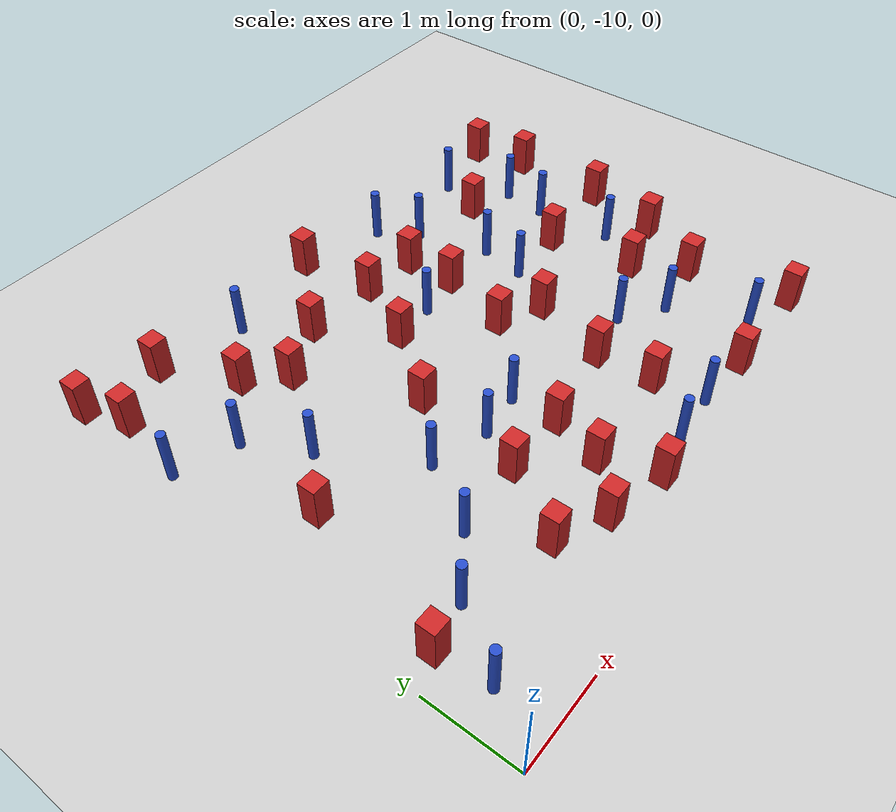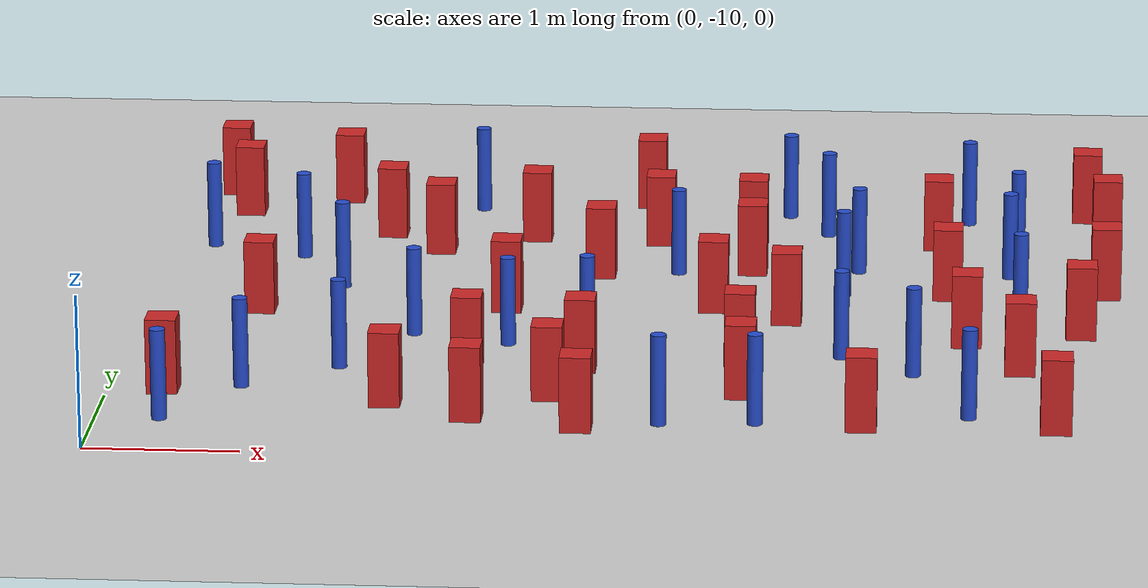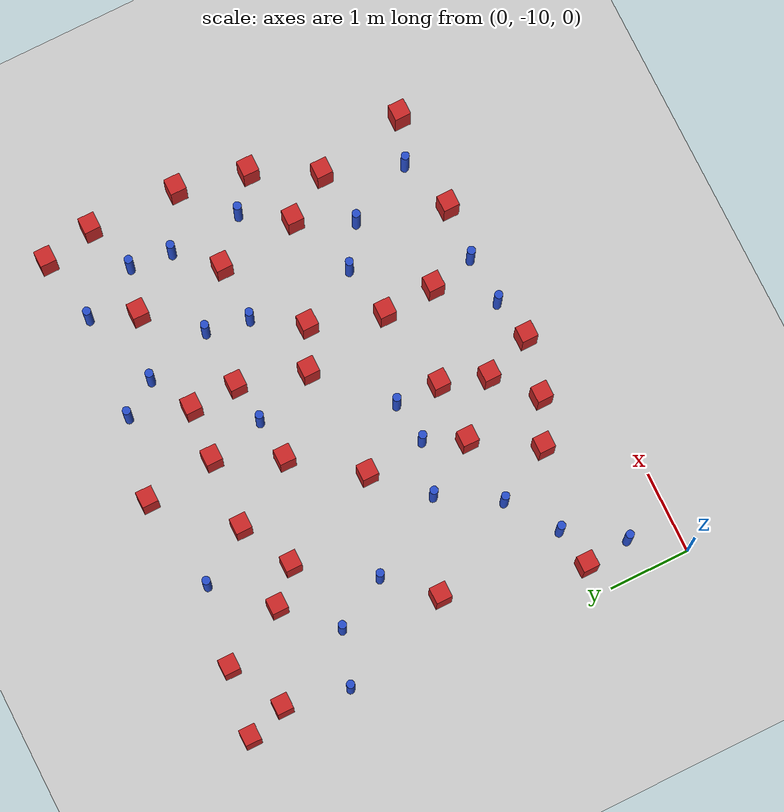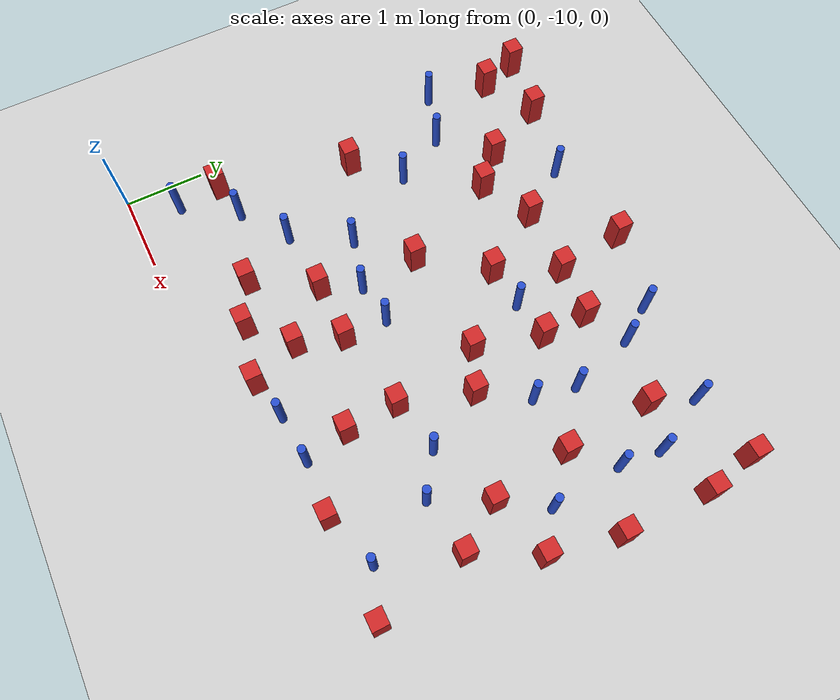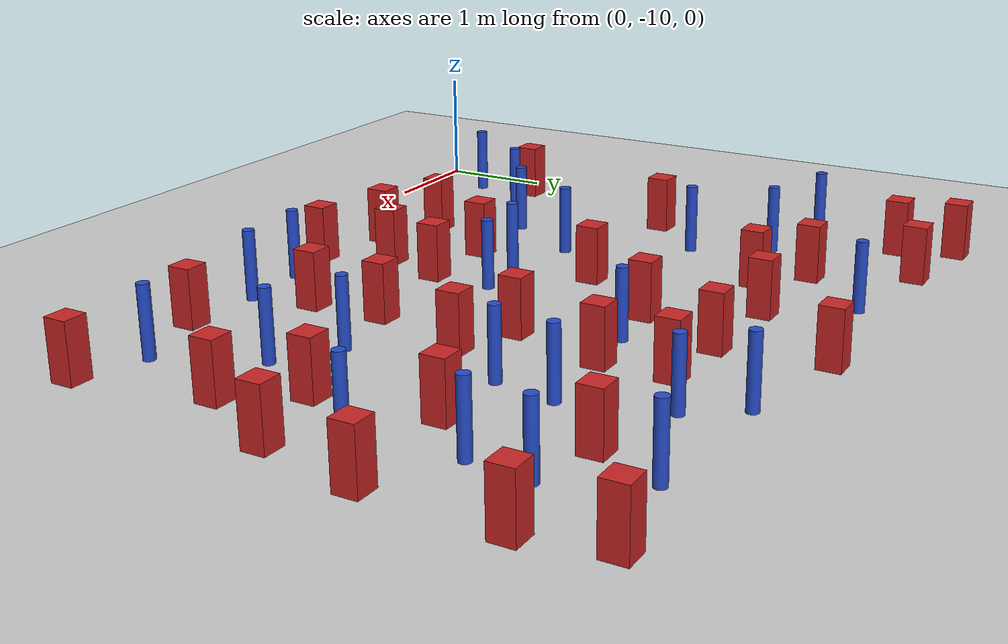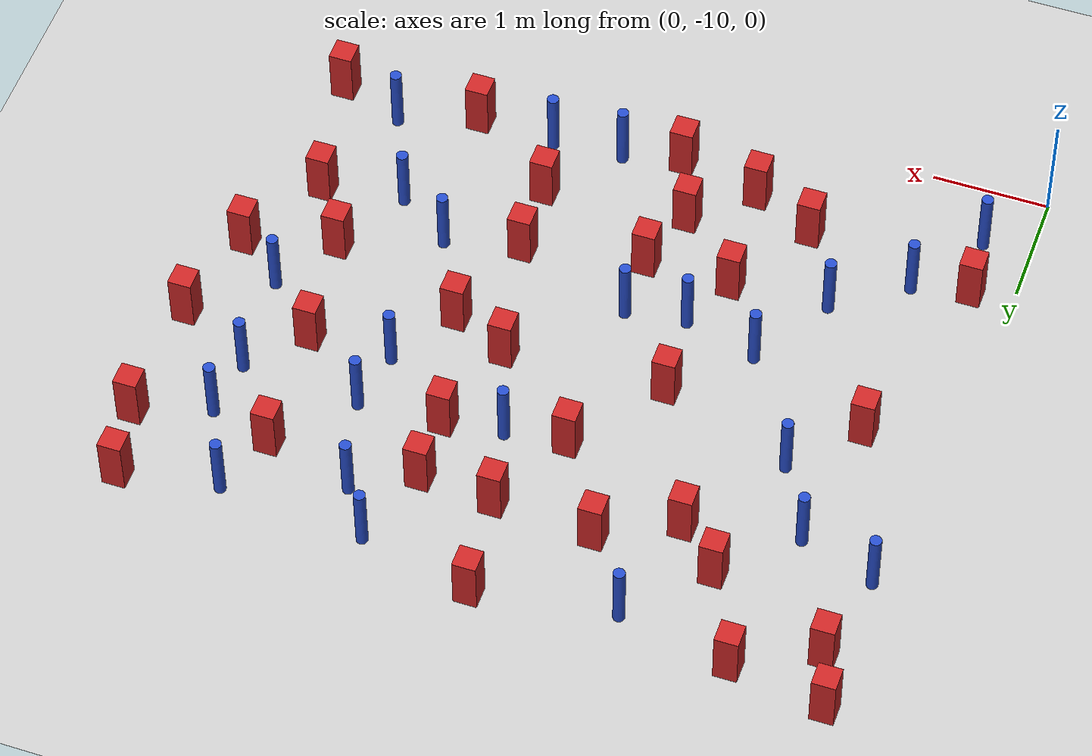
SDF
<sdf version="1.6">
 <world name="default">
  <model name="ground_plane">
   <static>1</static>
   <link name="link">
    <collision name="collision">
     <geometry><plane><normal>0 0 1</normal><size>100 100</size></plane></geometry>
     <surface><friction><ode><mu>100</mu><mu2>50</mu2></ode></friction></surface>
    </collision>
    <visual name="visual">
     <cast_shadows>0</cast_shadows>
     <geometry><plane><normal>0 0 1</normal><size>100 100</size></plane></geometry>
     <material>
      <ambient>1.0 1.0 1.0 1.0</ambient>
      <diffuse>0.8 0.8 0.8 1.0</diffuse>
      <specular>0.01 0.01 0.01 1.000000</specular>
     </material>
    </visual>
   </link>
  </model>
  <model name="square_post_obstacle0">
   <static>true</static>
   <pose>4.03438608395 -5.59124404248 -6.11067671241e-07 -5.50515727128e-06 -8.79689657224e-07 2.37013304536e-05</pose>
   <link name="link">
    <pose>0 0 0.25 0 -0 0</pose>
    <inertial>
     <mass>100</mass>
     <inertia>
      <ixx>0.166667</ixx>
      <ixy>0</ixy>
      <ixz>0</ixz>
      <iyy>0.166667</iyy>
      <iyz>0</iyz>
      <izz>0.166667</izz>
     </inertia>
    </inertial>
    <collision name="collision"><geometry><box><size>.2 .2 .5</size></box></geometry></collision>
    <visual name="visual">
     <geometry><box><size>.2 .2 .5</size></box></geometry>
     <material>
      <script><name>Gazebo/Red</name><uri>file://media/materials/scripts/gazebo.material</uri></script>
     </material>
    </visual>
   </link>
  </model>
  <model name="square_post_obstacle13">
   <static>true</static>
   <pose>2.83978793592 -8.85130759816 -6.11067671241e-07 -5.50515727128e-06 -8.79689657224e-07 2.37013304536e-05</pose>
   <link name="link">
    <pose>0 0 0.25 0 -0 0</pose>
    <inertial>
     <mass>100</mass>
     <inertia>
      <ixx>0.166667</ixx>
      <ixy>0</ixy>
      <ixz>0</ixz>
      <iyy>0.166667</iyy>
      <iyz>0</iyz>
      <izz>0.166667</izz>
     </inertia>
    </inertial>
    <collision name="collision"><geometry><box><size>.2 .2 .5</size></box></geometry></collision>
    <visual name="visual">
     <geometry><box><size>.2 .2 .5</size></box></geometry>
     <material>
      <script><name>Gazebo/Red</name><uri>file://media/materials/scripts/gazebo.material</uri></script>
     </material>
    </visual>
   </link>
  </model>
  <model name="pole_obstacle9">
   <static>true</static>
   <pose>4.77885601675 -6.13484441956 -9.47619616065e-06 5.49618799737e-07 2.36310414037e-07 -1.55090534814e-07</pose>
   <link name="link">
    <pose>0 0 0.3 0 -0 0</pose>
    <inertial>
     <mass>1</mass>
     <inertia><ixx>0.145833</ixx><ixy>0</ixy><ixz>0</ixz><iyy>0.145833</iyy><iyz>0</iyz><izz>0.125</izz></inertia>
    </inertial>
    <collision name="collision">
     <geometry><cylinder><radius>0.05</radius><length>.6</length></cylinder></geometry>
    </collision>
    <visual name="visual">
     <geometry><cylinder><radius>0.05</radius><length>.6</length></cylinder></geometry>
     <material>
      <script><name>Gazebo/Blue</name><uri>file://media/materials/scripts/gazebo.material</uri></script>
     </material>
    </visual>
   </link>
  </model>
  <model name="square_post_obstacle23">
   <static>true</static>
   <pose>6.27539899405 -7.42334846016 -6.11067671241e-07 -5.50515727128e-06 -8.79689657224e-07 2.37013304536e-05</pose>
   <link name="link">
    <pose>0 0 0.25 0 -0 0</pose>
    <inertial>
     <mass>100</mass>
     <inertia>
      <ixx>0.166667</ixx>
      <ixy>0</ixy>
      <ixz>0</ixz>
      <iyy>0.166667</iyy>
      <iyz>0</iyz>
      <izz>0.166667</izz>
     </inertia>
    </inertial>
    <collision name="collision"><geometry><box><size>.2 .2 .5</size></box></geometry></collision>
    <visual name="visual">
     <geometry><box><size>.2 .2 .5</size></box></geometry>
     <material>
      <script><name>Gazebo/Red</name><uri>file://media/materials/scripts/gazebo.material</uri></script>
     </material>
    </visual>
   </link>
  </model>
  <model name="square_post_obstacle24">
   <static>true</static>
   <pose>0.453122512933 -4.9976376463 -6.11067671241e-07 -5.50515727128e-06 -8.79689657224e-07 2.37013304536e-05</pose>
   <link name="link">
    <pose>0 0 0.25 0 -0 0</pose>
    <inertial>
     <mass>100</mass>
     <inertia>
      <ixx>0.166667</ixx>
      <ixy>0</ixy>
      <ixz>0</ixz>
      <iyy>0.166667</iyy>
      <iyz>0</iyz>
      <izz>0.166667</izz>
     </inertia>
    </inertial>
    <collision name="collision"><geometry><box><size>.2 .2 .5</size></box></geometry></collision>
    <visual name="visual">
     <geometry><box><size>.2 .2 .5</size></box></geometry>
     <material>
      <script><name>Gazebo/Red</name><uri>file://media/materials/scripts/gazebo.material</uri></script>
     </material>
    </visual>
   </link>
  </model>
  <model name="pole_obstacle42">
   <static>true</static>
   <pose>3.54738898103 -6.23367507954 -9.47619616065e-06 5.49618799738e-07 2.3631041406e-07 -1.55090534801e-07</pose>
   <link name="link">
    <pose>0 0 0.3 0 -0 0</pose>
    <inertial>
     <mass>1</mass>
     <inertia><ixx>0.145833</ixx><ixy>0</ixy><ixz>0</ixz><iyy>0.145833</iyy><iyz>0</iyz><izz>0.125</izz></inertia>
    </inertial>
    <collision name="collision">
     <geometry><cylinder><radius>0.05</radius><length>.6</length></cylinder></geometry>
    </collision>
    <visual name="visual">
     <geometry><cylinder><radius>0.05</radius><length>.6</length></cylinder></geometry>
     <material>
      <script><name>Gazebo/Blue</name><uri>file://media/materials/scripts/gazebo.material</uri></script>
     </material>
    </visual>
   </link>
  </model>
  <model name="square_post_obstacle44">
   <static>true</static>
   <pose>1.50933184095 -5.4530257998 -6.11067671241e-07 -5.50515727128e-06 -8.79689657224e-07 2.37013304536e-05</pose>
   <link name="link">
    <pose>0 0 0.25 0 -0 0</pose>
    <inertial>
     <mass>100</mass>
     <inertia>
      <ixx>0.166667</ixx>
      <ixy>0</ixy>
      <ixz>0</ixz>
      <iyy>0.166667</iyy>
      <iyz>0</iyz>
      <izz>0.166667</izz>
     </inertia>
    </inertial>
    <collision name="collision"><geometry><box><size>.2 .2 .5</size></box></geometry></collision>
    <visual name="visual">
     <geometry><box><size>.2 .2 .5</size></box></geometry>
     <material>
      <script><name>Gazebo/Red</name><uri>file://media/materials/scripts/gazebo.material</uri></script>
     </material>
    </visual>
   </link>
  </model>
  <model name="pole_obstacle46">
   <static>true</static>
   <pose>0.945628362629 -6.00839822146 -9.47619616065e-06 5.49618799737e-07 2.36310414065e-07 -1.55090534796e-07</pose>
   <link name="link">
    <pose>0 0 0.3 0 -0 0</pose>
    <inertial>
     <mass>1</mass>
     <inertia><ixx>0.145833</ixx><ixy>0</ixy><ixz>0</ixz><iyy>0.145833</iyy><iyz>0</iyz><izz>0.125</izz></inertia>
    </inertial>
    <collision name="collision">
     <geometry><cylinder><radius>0.05</radius><length>.6</length></cylinder></geometry>
    </collision>
    <visual name="visual">
     <geometry><cylinder><radius>0.05</radius><length>.6</length></cylinder></geometry>
     <material>
      <script><name>Gazebo/Blue</name><uri>file://media/materials/scripts/gazebo.material</uri></script>
     </material>
    </visual>
   </link>
  </model>
  <model name="square_post_obstacle55">
   <static>true</static>
   <pose>4.85975693543 -9.32978967064 -6.11067671241e-07 -5.50515727128e-06 -8.79689657224e-07 2.37013304536e-05</pose>
   <link name="link">
    <pose>0 0 0.25 0 -0 0</pose>
    <inertial>
     <mass>100</mass>
     <inertia>
      <ixx>0.166667</ixx>
      <ixy>0</ixy>
      <ixz>0</ixz>
      <iyy>0.166667</iyy>
      <iyz>0</iyz>
      <izz>0.166667</izz>
     </inertia>
    </inertial>
    <collision name="collision"><geometry><box><size>.2 .2 .5</size></box></geometry></collision>
    <visual name="visual">
     <geometry><box><size>.2 .2 .5</size></box></geometry>
     <material>
      <script><name>Gazebo/Red</name><uri>file://media/materials/scripts/gazebo.material</uri></script>
     </material>
    </visual>
   </link>
  </model>
  <model name="pole_obstacle53">
   <static>true</static>
   <pose>1.44177730624 -8.34359910284 -9.47619616065e-06 5.49618799737e-07 2.36310414046e-07 -1.55090534809e-07</pose>
   <link name="link">
    <pose>0 0 0.3 0 -0 0</pose>
    <inertial>
     <mass>1</mass>
     <inertia><ixx>0.145833</ixx><ixy>0</ixy><ixz>0</ixz><iyy>0.145833</iyy><iyz>0</iyz><izz>0.125</izz></inertia>
    </inertial>
    <collision name="collision">
     <geometry><cylinder><radius>0.05</radius><length>.6</length></cylinder></geometry>
    </collision>
    <visual name="visual">
     <geometry><cylinder><radius>0.05</radius><length>.6</length></cylinder></geometry>
     <material>
      <script><name>Gazebo/Blue</name><uri>file://media/materials/scripts/gazebo.material</uri></script>
     </material>
    </visual>
   </link>
  </model>
  <model name="pole_obstacle56">
   <static>true</static>
   <pose>3.02124978385 -7.743135954 -9.47619616065e-06 5.49618799738e-07 2.3631041406e-07 -1.55090534801e-07</pose>
   <link name="link">
    <pose>0 0 0.3 0 -0 0</pose>
    <inertial>
     <mass>1</mass>
     <inertia><ixx>0.145833</ixx><ixy>0</ixy><ixz>0</ixz><iyy>0.145833</iyy><iyz>0</iyz><izz>0.125</izz></inertia>
    </inertial>
    <collision name="collision">
     <geometry><cylinder><radius>0.05</radius><length>.6</length></cylinder></geometry>
    </collision>
    <visual name="visual">
     <geometry><cylinder><radius>0.05</radius><length>.6</length></cylinder></geometry>
     <material>
      <script><name>Gazebo/Blue</name><uri>file://media/materials/scripts/gazebo.material</uri></script>
     </material>
    </visual>
   </link>
  </model>
  <model name="square_post_obstacle66">
   <static>true</static>
   <pose>5.51881716951 -7.63360474331 -6.11067671241e-07 -5.50515727128e-06 -8.79689657224e-07 2.37013304536e-05</pose>
   <link name="link">
    <pose>0 0 0.25 0 -0 0</pose>
    <inertial>
     <mass>100</mass>
     <inertia>
      <ixx>0.166667</ixx>
      <ixy>0</ixy>
      <ixz>0</ixz>
      <iyy>0.166667</iyy>
      <iyz>0</iyz>
      <izz>0.166667</izz>
     </inertia>
    </inertial>
    <collision name="collision"><geometry><box><size>.2 .2 .5</size></box></geometry></collision>
    <visual name="visual">
     <geometry><box><size>.2 .2 .5</size></box></geometry>
     <material>
      <script><name>Gazebo/Red</name><uri>file://media/materials/scripts/gazebo.material</uri></script>
     </material>
    </visual>
   </link>
  </model>
  <model name="square_post_obstacle73">
   <static>true</static>
   <pose>3.82033667119 -6.99757932662 -6.11067671241e-07 -5.50515727128e-06 -8.79689657224e-07 2.37013304536e-05</pose>
   <link name="link">
    <pose>0 0 0.25 0 -0 0</pose>
    <inertial>
     <mass>100</mass>
     <inertia>
      <ixx>0.166667</ixx>
      <ixy>0</ixy>
      <ixz>0</ixz>
      <iyy>0.166667</iyy>
      <iyz>0</iyz>
      <izz>0.166667</izz>
     </inertia>
    </inertial>
    <collision name="collision"><geometry><box><size>.2 .2 .5</size></box></geometry></collision>
    <visual name="visual">
     <geometry><box><size>.2 .2 .5</size></box></geometry>
     <material>
      <script><name>Gazebo/Red</name><uri>file://media/materials/scripts/gazebo.material</uri></script>
     </material>
    </visual>
   </link>
  </model>
  <model name="pole_obstacle70">
   <static>true</static>
   <pose>5.86598726586 -5.68438135382 -9.47619616065e-06 5.49618799737e-07 2.36310414037e-07 -1.55090534814e-07</pose>
   <link name="link">
    <pose>0 0 0.3 0 -0 0</pose>
    <inertial>
     <mass>1</mass>
     <inertia><ixx>0.145833</ixx><ixy>0</ixy><ixz>0</ixz><iyy>0.145833</iyy><iyz>0</iyz><izz>0.125</izz></inertia>
    </inertial>
    <collision name="collision">
     <geometry><cylinder><radius>0.05</radius><length>.6</length></cylinder></geometry>
    </collision>
    <visual name="visual">
     <geometry><cylinder><radius>0.05</radius><length>.6</length></cylinder></geometry>
     <material>
      <script><name>Gazebo/Blue</name><uri>file://media/materials/scripts/gazebo.material</uri></script>
     </material>
    </visual>
   </link>
  </model>
  <model name="pole_obstacle78">
   <static>true</static>
   <pose>4.68461789112 -6.66169733039 -9.47619616065e-06 5.49618799737e-07 2.36310414037e-07 -1.55090534814e-07</pose>
   <link name="link">
    <pose>0 0 0.3 0 -0 0</pose>
    <inertial>
     <mass>1</mass>
     <inertia><ixx>0.145833</ixx><ixy>0</ixy><ixz>0</ixz><iyy>0.145833</iyy><iyz>0</iyz><izz>0.125</izz></inertia>
    </inertial>
    <collision name="collision">
     <geometry><cylinder><radius>0.05</radius><length>.6</length></cylinder></geometry>
    </collision>
    <visual name="visual">
     <geometry><cylinder><radius>0.05</radius><length>.6</length></cylinder></geometry>
     <material>
      <script><name>Gazebo/Blue</name><uri>file://media/materials/scripts/gazebo.material</uri></script>
     </material>
    </visual>
   </link>
  </model>
  <model name="pole_obstacle79">
   <static>true</static>
   <pose>0.294471589557 -5.7892974481 -9.47619616065e-06 5.49618799737e-07 2.36310414067e-07 -1.55090534795e-07</pose>
   <link name="link">
    <pose>0 0 0.3 0 -0 0</pose>
    <inertial>
     <mass>1</mass>
     <inertia><ixx>0.145833</ixx><ixy>0</ixy><ixz>0</ixz><iyy>0.145833</iyy><iyz>0</iyz><izz>0.125</izz></inertia>
    </inertial>
    <collision name="collision">
     <geometry><cylinder><radius>0.05</radius><length>.6</length></cylinder></geometry>
    </collision>
    <visual name="visual">
     <geometry><cylinder><radius>0.05</radius><length>.6</length></cylinder></geometry>
     <material>
      <script><name>Gazebo/Blue</name><uri>file://media/materials/scripts/gazebo.material</uri></script>
     </material>
    </visual>
   </link>
  </model>
  <model name="square_post_obstacle78">
   <static>true</static>
   <pose>3.02090235567 -6.29414527579 -6.11067671241e-07 -5.50515727128e-06 -8.79689657224e-07 2.37013304536e-05</pose>
   <link name="link">
    <pose>0 0 0.25 0 -0 0</pose>
    <inertial>
     <mass>100</mass>
     <inertia>
      <ixx>0.166667</ixx>
      <ixy>0</ixy>
      <ixz>0</ixz>
      <iyy>0.166667</iyy>
      <iyz>0</iyz>
      <izz>0.166667</izz>
     </inertia>
    </inertial>
    <collision name="collision"><geometry><box><size>.2 .2 .5</size></box></geometry></collision>
    <visual name="visual">
     <geometry><box><size>.2 .2 .5</size></box></geometry>
     <material>
      <script><name>Gazebo/Red</name><uri>file://media/materials/scripts/gazebo.material</uri></script>
     </material>
    </visual>
   </link>
  </model>
  <model name="pole_obstacle82">
   <static>true</static>
   <pose>4.1876604869 -9.29163023426 -9.47619616065e-06 5.49618799737e-07 2.36310414065e-07 -1.55090534796e-07</pose>
   <link name="link">
    <pose>0 0 0.3 0 -0 0</pose>
    <inertial>
     <mass>1</mass>
     <inertia><ixx>0.145833</ixx><ixy>0</ixy><ixz>0</ixz><iyy>0.145833</iyy><iyz>0</iyz><izz>0.125</izz></inertia>
    </inertial>
    <collision name="collision">
     <geometry><cylinder><radius>0.05</radius><length>.6</length></cylinder></geometry>
    </collision>
    <visual name="visual">
     <geometry><cylinder><radius>0.05</radius><length>.6</length></cylinder></geometry>
     <material>
      <script><name>Gazebo/Blue</name><uri>file://media/materials/scripts/gazebo.material</uri></script>
     </material>
    </visual>
   </link>
  </model>
  <model name="square_post_obstacle83">
   <static>true</static>
   <pose>4.05098494814 -6.17034678767 -6.11067671241e-07 -5.50515727128e-06 -8.79689657224e-07 2.37013304536e-05</pose>
   <link name="link">
    <pose>0 0 0.25 0 -0 0</pose>
    <inertial>
     <mass>100</mass>
     <inertia>
      <ixx>0.166667</ixx>
      <ixy>0</ixy>
      <ixz>0</ixz>
      <iyy>0.166667</iyy>
      <iyz>0</iyz>
      <izz>0.166667</izz>
     </inertia>
    </inertial>
    <collision name="collision"><geometry><box><size>.2 .2 .5</size></box></geometry></collision>
    <visual name="visual">
     <geometry><box><size>.2 .2 .5</size></box></geometry>
     <material>
      <script><name>Gazebo/Red</name><uri>file://media/materials/scripts/gazebo.material</uri></script>
     </material>
    </visual>
   </link>
  </model>
  <model name="pole_obstacle96">
   <static>true</static>
   <pose>2.09202497045 -4.84234841266 -9.47619616065e-06 5.49618799738e-07 2.3631041406e-07 -1.55090534801e-07</pose>
   <link name="link">
    <pose>0 0 0.3 0 -0 0</pose>
    <inertial>
     <mass>1</mass>
     <inertia><ixx>0.145833</ixx><ixy>0</ixy><ixz>0</ixz><iyy>0.145833</iyy><iyz>0</iyz><izz>0.125</izz></inertia>
    </inertial>
    <collision name="collision">
     <geometry><cylinder><radius>0.05</radius><length>.6</length></cylinder></geometry>
    </collision>
    <visual name="visual">
     <geometry><cylinder><radius>0.05</radius><length>.6</length></cylinder></geometry>
     <material>
      <script><name>Gazebo/Blue</name><uri>file://media/materials/scripts/gazebo.material</uri></script>
     </material>
    </visual>
   </link>
  </model>
  <model name="pole_obstacle97">
   <static>true</static>
   <pose>0.850600874151 -8.76208607417 -9.47619616065e-06 5.49618799737e-07 2.36310414038e-07 -1.55090534813e-07</pose>
   <link name="link">
    <pose>0 0 0.3 0 -0 0</pose>
    <inertial>
     <mass>1</mass>
     <inertia><ixx>0.145833</ixx><ixy>0</ixy><ixz>0</ixz><iyy>0.145833</iyy><iyz>0</iyz><izz>0.125</izz></inertia>
    </inertial>
    <collision name="collision">
     <geometry><cylinder><radius>0.05</radius><length>.6</length></cylinder></geometry>
    </collision>
    <visual name="visual">
     <geometry><cylinder><radius>0.05</radius><length>.6</length></cylinder></geometry>
     <material>
      <script><name>Gazebo/Blue</name><uri>file://media/materials/scripts/gazebo.material</uri></script>
     </material>
    </visual>
   </link>
  </model>
  <model name="square_post_obstacle88">
   <static>true</static>
   <pose>5.31654601096 -5.52830732835 -6.11067671241e-07 -5.50515727128e-06 -8.79689657224e-07 2.37013304536e-05</pose>
   <link name="link">
    <pose>0 0 0.25 0 -0 0</pose>
    <inertial>
     <mass>100</mass>
     <inertia>
      <ixx>0.166667</ixx>
      <ixy>0</ixy>
      <ixz>0</ixz>
      <iyy>0.166667</iyy>
      <iyz>0</iyz>
      <izz>0.166667</izz>
     </inertia>
    </inertial>
    <collision name="collision"><geometry><box><size>.2 .2 .5</size></box></geometry></collision>
    <visual name="visual">
     <geometry><box><size>.2 .2 .5</size></box></geometry>
     <material>
      <script><name>Gazebo/Red</name><uri>file://media/materials/scripts/gazebo.material</uri></script>
     </material>
    </visual>
   </link>
  </model>
  <model name="square_post_obstacle105">
   <static>true</static>
   <pose>6.45507532834 -6.56712777931 -6.11067671241e-07 -5.50515727128e-06 -8.79689657224e-07 2.37013304536e-05</pose>
   <link name="link">
    <pose>0 0 0.25 0 -0 0</pose>
    <inertial>
     <mass>100</mass>
     <inertia>
      <ixx>0.166667</ixx>
      <ixy>0</ixy>
      <ixz>0</ixz>
      <iyy>0.166667</iyy>
      <iyz>0</iyz>
      <izz>0.166667</izz>
     </inertia>
    </inertial>
    <collision name="collision"><geometry><box><size>.2 .2 .5</size></box></geometry></collision>
    <visual name="visual">
     <geometry><box><size>.2 .2 .5</size></box></geometry>
     <material>
      <script><name>Gazebo/Red</name><uri>file://media/materials/scripts/gazebo.material</uri></script>
     </material>
    </visual>
   </link>
  </model>
  <model name="pole_obstacle130">
   <static>true</static>
   <pose>5.17608930107 -8.29183295654 -9.47619616065e-06 5.49618799737e-07 2.36310414065e-07 -1.55090534796e-07</pose>
   <link name="link">
    <pose>0 0 0.3 0 -0 0</pose>
    <inertial>
     <mass>1</mass>
     <inertia><ixx>0.145833</ixx><ixy>0</ixy><ixz>0</ixz><iyy>0.145833</iyy><iyz>0</iyz><izz>0.125</izz></inertia>
    </inertial>
    <collision name="collision">
     <geometry><cylinder><radius>0.05</radius><length>.6</length></cylinder></geometry>
    </collision>
    <visual name="visual">
     <geometry><cylinder><radius>0.05</radius><length>.6</length></cylinder></geometry>
     <material>
      <script><name>Gazebo/Blue</name><uri>file://media/materials/scripts/gazebo.material</uri></script>
     </material>
    </visual>
   </link>
  </model>
  <model name="square_post_obstacle124">
   <static>true</static>
   <pose>5.86844677855 -8.18414676837 -6.11067671241e-07 -5.50515727128e-06 -8.79689657224e-07 2.37013304536e-05</pose>
   <link name="link">
    <pose>0 0 0.25 0 -0 0</pose>
    <inertial>
     <mass>100</mass>
     <inertia>
      <ixx>0.166667</ixx>
      <ixy>0</ixy>
      <ixz>0</ixz>
      <iyy>0.166667</iyy>
      <iyz>0</iyz>
      <izz>0.166667</izz>
     </inertia>
    </inertial>
    <collision name="collision"><geometry><box><size>.2 .2 .5</size></box></geometry></collision>
    <visual name="visual">
     <geometry><box><size>.2 .2 .5</size></box></geometry>
     <material>
      <script><name>Gazebo/Red</name><uri>file://media/materials/scripts/gazebo.material</uri></script>
     </material>
    </visual>
   </link>
  </model>
  <model name="pole_obstacle141">
   <static>true</static>
   <pose>4.54980051977 -5.3125119959 -9.47619616065e-06 5.49618799737e-07 2.36310414037e-07 -1.55090534814e-07</pose>
   <link name="link">
    <pose>0 0 0.3 0 -0 0</pose>
    <inertial>
     <mass>1</mass>
     <inertia><ixx>0.145833</ixx><ixy>0</ixy><ixz>0</ixz><iyy>0.145833</iyy><iyz>0</iyz><izz>0.125</izz></inertia>
    </inertial>
    <collision name="collision">
     <geometry><cylinder><radius>0.05</radius><length>.6</length></cylinder></geometry>
    </collision>
    <visual name="visual">
     <geometry><cylinder><radius>0.05</radius><length>.6</length></cylinder></geometry>
     <material>
      <script><name>Gazebo/Blue</name><uri>file://media/materials/scripts/gazebo.material</uri></script>
     </material>
    </visual>
   </link>
  </model>
  <model name="square_post_obstacle126">
   <static>true</static>
   <pose>2.52549769799 -5.49002497302 -6.11067671241e-07 -5.50515727128e-06 -8.79689657224e-07 2.37013304536e-05</pose>
   <link name="link">
    <pose>0 0 0.25 0 -0 0</pose>
    <inertial>
     <mass>100</mass>
     <inertia>
      <ixx>0.166667</ixx>
      <ixy>0</ixy>
      <ixz>0</ixz>
      <iyy>0.166667</iyy>
      <iyz>0</iyz>
      <izz>0.166667</izz>
     </inertia>
    </inertial>
    <collision name="collision"><geometry><box><size>.2 .2 .5</size></box></geometry></collision>
    <visual name="visual">
     <geometry><box><size>.2 .2 .5</size></box></geometry>
     <material>
      <script><name>Gazebo/Red</name><uri>file://media/materials/scripts/gazebo.material</uri></script>
     </material>
    </visual>
   </link>
  </model>
  <model name="square_post_obstacle128">
   <static>true</static>
   <pose>0.359200778718 -8.85717566952 -6.11067671241e-07 -5.50515727128e-06 -8.79689657224e-07 2.37013304536e-05</pose>
   <link name="link">
    <pose>0 0 0.25 0 -0 0</pose>
    <inertial>
     <mass>100</mass>
     <inertia>
      <ixx>0.166667</ixx>
      <ixy>0</ixy>
      <ixz>0</ixz>
      <iyy>0.166667</iyy>
      <iyz>0</iyz>
      <izz>0.166667</izz>
     </inertia>
    </inertial>
    <collision name="collision"><geometry><box><size>.2 .2 .5</size></box></geometry></collision>
    <visual name="visual">
     <geometry><box><size>.2 .2 .5</size></box></geometry>
     <material>
      <script><name>Gazebo/Red</name><uri>file://media/materials/scripts/gazebo.material</uri></script>
     </material>
    </visual>
   </link>
  </model>
  <model name="square_post_obstacle130">
   <static>true</static>
   <pose>2.27337135861 -8.28287275926 -6.11067671241e-07 -5.50515727128e-06 -8.79689657224e-07 2.37013304536e-05</pose>
   <link name="link">
    <pose>0 0 0.25 0 -0 0</pose>
    <inertial>
     <mass>100</mass>
     <inertia>
      <ixx>0.166667</ixx>
      <ixy>0</ixy>
      <ixz>0</ixz>
      <iyy>0.166667</iyy>
      <iyz>0</iyz>
      <izz>0.166667</izz>
     </inertia>
    </inertial>
    <collision name="collision"><geometry><box><size>.2 .2 .5</size></box></geometry></collision>
    <visual name="visual">
     <geometry><box><size>.2 .2 .5</size></box></geometry>
     <material>
      <script><name>Gazebo/Red</name><uri>file://media/materials/scripts/gazebo.material</uri></script>
     </material>
    </visual>
   </link>
  </model>
  <model name="square_post_obstacle133">
   <static>true</static>
   <pose>3.28163381555 -4.66140802988 -6.11067671241e-07 -5.50515727128e-06 -8.79689657224e-07 2.37013304536e-05</pose>
   <link name="link">
    <pose>0 0 0.25 0 -0 0</pose>
    <inertial>
     <mass>100</mass>
     <inertia>
      <ixx>0.166667</ixx>
      <ixy>0</ixy>
      <ixz>0</ixz>
      <iyy>0.166667</iyy>
      <iyz>0</iyz>
      <izz>0.166667</izz>
     </inertia>
    </inertial>
    <collision name="collision"><geometry><box><size>.2 .2 .5</size></box></geometry></collision>
    <visual name="visual">
     <geometry><box><size>.2 .2 .5</size></box></geometry>
     <material>
      <script><name>Gazebo/Red</name><uri>file://media/materials/scripts/gazebo.material</uri></script>
     </material>
    </visual>
   </link>
  </model>
  <model name="square_post_obstacle136">
   <static>true</static>
   <pose>1.88030636692 -5.81164342965 -6.11067671241e-07 -5.50515727128e-06 -8.79689657224e-07 2.37013304536e-05</pose>
   <link name="link">
    <pose>0 0 0.25 0 -0 0</pose>
    <inertial>
     <mass>100</mass>
     <inertia>
      <ixx>0.166667</ixx>
      <ixy>0</ixy>
      <ixz>0</ixz>
      <iyy>0.166667</iyy>
      <iyz>0</iyz>
      <izz>0.166667</izz>
     </inertia>
    </inertial>
    <collision name="collision"><geometry><box><size>.2 .2 .5</size></box></geometry></collision>
    <visual name="visual">
     <geometry><box><size>.2 .2 .5</size></box></geometry>
     <material>
      <script><name>Gazebo/Red</name><uri>file://media/materials/scripts/gazebo.material</uri></script>
     </material>
    </visual>
   </link>
  </model>
  <model name="square_post_obstacle139">
   <static>true</static>
   <pose>6.35557648631 -4.83740751555 -6.11067671241e-07 -5.50515727128e-06 -8.79689657224e-07 2.37013304536e-05</pose>
   <link name="link">
    <pose>0 0 0.25 0 -0 0</pose>
    <inertial>
     <mass>100</mass>
     <inertia>
      <ixx>0.166667</ixx>
      <ixy>0</ixy>
      <ixz>0</ixz>
      <iyy>0.166667</iyy>
      <iyz>0</iyz>
      <izz>0.166667</izz>
     </inertia>
    </inertial>
    <collision name="collision"><geometry><box><size>.2 .2 .5</size></box></geometry></collision>
    <visual name="visual">
     <geometry><box><size>.2 .2 .5</size></box></geometry>
     <material>
      <script><name>Gazebo/Red</name><uri>file://media/materials/scripts/gazebo.material</uri></script>
     </material>
    </visual>
   </link>
  </model>
  <model name="pole_obstacle151">
   <static>true</static>
   <pose>1.86496939214 -7.63906305642 -9.47619616065e-06 5.49618799737e-07 2.36310414061e-07 -1.550905348e-07</pose>
   <link name="link">
    <pose>0 0 0.3 0 -0 0</pose>
    <inertial>
     <mass>1</mass>
     <inertia><ixx>0.145833</ixx><ixy>0</ixy><ixz>0</ixz><iyy>0.145833</iyy><iyz>0</iyz><izz>0.125</izz></inertia>
    </inertial>
    <collision name="collision">
     <geometry><cylinder><radius>0.05</radius><length>.6</length></cylinder></geometry>
    </collision>
    <visual name="visual">
     <geometry><cylinder><radius>0.05</radius><length>.6</length></cylinder></geometry>
     <material>
      <script><name>Gazebo/Blue</name><uri>file://media/materials/scripts/gazebo.material</uri></script>
     </material>
    </visual>
   </link>
  </model>
  <model name="square_post_obstacle143">
   <static>true</static>
   <pose>3.01431027649 -8.28769500787 -6.11067671241e-07 -5.50515727128e-06 -8.79689657224e-07 2.37013304536e-05</pose>
   <link name="link">
    <pose>0 0 0.25 0 -0 0</pose>
    <inertial>
     <mass>100</mass>
     <inertia>
      <ixx>0.166667</ixx>
      <ixy>0</ixy>
      <ixz>0</ixz>
      <iyy>0.166667</iyy>
      <iyz>0</iyz>
      <izz>0.166667</izz>
     </inertia>
    </inertial>
    <collision name="collision"><geometry><box><size>.2 .2 .5</size></box></geometry></collision>
    <visual name="visual">
     <geometry><box><size>.2 .2 .5</size></box></geometry>
     <material>
      <script><name>Gazebo/Red</name><uri>file://media/materials/scripts/gazebo.material</uri></script>
     </material>
    </visual>
   </link>
  </model>
  <model name="square_post_obstacle150">
   <static>true</static>
   <pose>6.08999856672 -9.31061499065 -6.11067671241e-07 -5.50515727128e-06 -8.79689657224e-07 2.37013304536e-05</pose>
   <link name="link">
    <pose>0 0 0.25 0 -0 0</pose>
    <inertial>
     <mass>100</mass>
     <inertia>
      <ixx>0.166667</ixx>
      <ixy>0</ixy>
      <ixz>0</ixz>
      <iyy>0.166667</iyy>
      <iyz>0</iyz>
      <izz>0.166667</izz>
     </inertia>
    </inertial>
    <collision name="collision"><geometry><box><size>.2 .2 .5</size></box></geometry></collision>
    <visual name="visual">
     <geometry><box><size>.2 .2 .5</size></box></geometry>
     <material>
      <script><name>Gazebo/Red</name><uri>file://media/materials/scripts/gazebo.material</uri></script>
     </material>
    </visual>
   </link>
  </model>
  <model name="pole_obstacle157">
   <static>true</static>
   <pose>5.80832989445 -6.19612195389 -9.47619616065e-06 5.49618799737e-07 2.36310414037e-07 -1.55090534814e-07</pose>
   <link name="link">
    <pose>0 0 0.3 0 -0 0</pose>
    <inertial>
     <mass>1</mass>
     <inertia><ixx>0.145833</ixx><ixy>0</ixy><ixz>0</ixz><iyy>0.145833</iyy><iyz>0</iyz><izz>0.125</izz></inertia>
    </inertial>
    <collision name="collision">
     <geometry><cylinder><radius>0.05</radius><length>.6</length></cylinder></geometry>
    </collision>
    <visual name="visual">
     <geometry><cylinder><radius>0.05</radius><length>.6</length></cylinder></geometry>
     <material>
      <script><name>Gazebo/Blue</name><uri>file://media/materials/scripts/gazebo.material</uri></script>
     </material>
    </visual>
   </link>
  </model>
  <model name="square_post_obstacle154">
   <static>true</static>
   <pose>0.786347471856 -7.18552769064 -6.11067671241e-07 -5.50515727128e-06 -8.79689657224e-07 2.37013304536e-05</pose>
   <link name="link">
    <pose>0 0 0.25 0 -0 0</pose>
    <inertial>
     <mass>100</mass>
     <inertia>
      <ixx>0.166667</ixx>
      <ixy>0</ixy>
      <ixz>0</ixz>
      <iyy>0.166667</iyy>
      <iyz>0</iyz>
      <izz>0.166667</izz>
     </inertia>
    </inertial>
    <collision name="collision"><geometry><box><size>.2 .2 .5</size></box></geometry></collision>
    <visual name="visual">
     <geometry><box><size>.2 .2 .5</size></box></geometry>
     <material>
      <script><name>Gazebo/Red</name><uri>file://media/materials/scripts/gazebo.material</uri></script>
     </material>
    </visual>
   </link>
  </model>
  <model name="square_post_obstacle155">
   <static>true</static>
   <pose>4.04289670943 -8.10022233304 -6.11067671241e-07 -5.50515727128e-06 -8.79689657224e-07 2.37013304536e-05</pose>
   <link name="link">
    <pose>0 0 0.25 0 -0 0</pose>
    <inertial>
     <mass>100</mass>
     <inertia>
      <ixx>0.166667</ixx>
      <ixy>0</ixy>
      <ixz>0</ixz>
      <iyy>0.166667</iyy>
      <iyz>0</iyz>
      <izz>0.166667</izz>
     </inertia>
    </inertial>
    <collision name="collision"><geometry><box><size>.2 .2 .5</size></box></geometry></collision>
    <visual name="visual">
     <geometry><box><size>.2 .2 .5</size></box></geometry>
     <material>
      <script><name>Gazebo/Red</name><uri>file://media/materials/scripts/gazebo.material</uri></script>
     </material>
    </visual>
   </link>
  </model>
  <model name="square_post_obstacle156">
   <static>true</static>
   <pose>4.07468220059 -8.74767241404 -6.11067671241e-07 -5.50515727128e-06 -8.79689657224e-07 2.37013304536e-05</pose>
   <link name="link">
    <pose>0 0 0.25 0 -0 0</pose>
    <inertial>
     <mass>100</mass>
     <inertia>
      <ixx>0.166667</ixx>
      <ixy>0</ixy>
      <ixz>0</ixz>
      <iyy>0.166667</iyy>
      <iyz>0</iyz>
      <izz>0.166667</izz>
     </inertia>
    </inertial>
    <collision name="collision"><geometry><box><size>.2 .2 .5</size></box></geometry></collision>
    <visual name="visual">
     <geometry><box><size>.2 .2 .5</size></box></geometry>
     <material>
      <script><name>Gazebo/Red</name><uri>file://media/materials/scripts/gazebo.material</uri></script>
     </material>
    </visual>
   </link>
  </model>
  <model name="pole_obstacle169">
   <static>true</static>
   <pose>3.57923949105 -9.33822170133 -9.4761961606e-06 5.49618799729e-07 2.36310414e-07 -1.55090534824e-07</pose>
   <link name="link">
    <pose>0 0 0.3 0 -0 0</pose>
    <inertial>
     <mass>1</mass>
     <inertia><ixx>0.145833</ixx><ixy>0</ixy><ixz>0</ixz><iyy>0.145833</iyy><iyz>0</iyz><izz>0.125</izz></inertia>
    </inertial>
    <collision name="collision">
     <geometry><cylinder><radius>0.05</radius><length>.6</length></cylinder></geometry>
    </collision>
    <visual name="visual">
     <geometry><cylinder><radius>0.05</radius><length>.6</length></cylinder></geometry>
     <material>
      <script><name>Gazebo/Blue</name><uri>file://media/materials/scripts/gazebo.material</uri></script>
     </material>
    </visual>
   </link>
  </model>
  <model name="pole_obstacle176">
   <static>true</static>
   <pose>5.874791302 -7.09468508234 -9.47619616065e-06 5.49618799737e-07 2.36310414037e-07 -1.55090534814e-07</pose>
   <link name="link">
    <pose>0 0 0.3 0 -0 0</pose>
    <inertial>
     <mass>1</mass>
     <inertia><ixx>0.145833</ixx><ixy>0</ixy><ixz>0</ixz><iyy>0.145833</iyy><iyz>0</iyz><izz>0.125</izz></inertia>
    </inertial>
    <collision name="collision">
     <geometry><cylinder><radius>0.05</radius><length>.6</length></cylinder></geometry>
    </collision>
    <visual name="visual">
     <geometry><cylinder><radius>0.05</radius><length>.6</length></cylinder></geometry>
     <material>
      <script><name>Gazebo/Blue</name><uri>file://media/materials/scripts/gazebo.material</uri></script>
     </material>
    </visual>
   </link>
  </model>
  <model name="square_post_obstacle171">
   <static>true</static>
   <pose>1.81297731194 -9.03419058951 -6.11067671241e-07 -5.50515727128e-06 -8.79689657224e-07 2.37013304536e-05</pose>
   <link name="link">
    <pose>0 0 0.25 0 -0 0</pose>
    <inertial>
     <mass>100</mass>
     <inertia>
      <ixx>0.166667</ixx>
      <ixy>0</ixy>
      <ixz>0</ixz>
      <iyy>0.166667</iyy>
      <iyz>0</iyz>
      <izz>0.166667</izz>
     </inertia>
    </inertial>
    <collision name="collision"><geometry><box><size>.2 .2 .5</size></box></geometry></collision>
    <visual name="visual">
     <geometry><box><size>.2 .2 .5</size></box></geometry>
     <material>
      <script><name>Gazebo/Red</name><uri>file://media/materials/scripts/gazebo.material</uri></script>
     </material>
    </visual>
   </link>
  </model>
  <model name="pole_obstacle186">
   <static>true</static>
   <pose>0.409684737297 -9.41687938605 -9.47619616065e-06 5.49618799737e-07 2.36310414031e-07 -1.55090534818e-07</pose>
   <link name="link">
    <pose>0 0 0.3 0 -0 0</pose>
    <inertial>
     <mass>1</mass>
     <inertia><ixx>0.145833</ixx><ixy>0</ixy><ixz>0</ixz><iyy>0.145833</iyy><iyz>0</iyz><izz>0.125</izz></inertia>
    </inertial>
    <collision name="collision">
     <geometry><cylinder><radius>0.05</radius><length>.6</length></cylinder></geometry>
    </collision>
    <visual name="visual">
     <geometry><cylinder><radius>0.05</radius><length>.6</length></cylinder></geometry>
     <material>
      <script><name>Gazebo/Blue</name><uri>file://media/materials/scripts/gazebo.material</uri></script>
     </material>
    </visual>
   </link>
  </model>
  <model name="square_post_obstacle174">
   <static>true</static>
   <pose>2.43566183894 -7.06906413133 -6.11067671241e-07 -5.50515727128e-06 -8.79689657224e-07 2.37013304536e-05</pose>
   <link name="link">
    <pose>0 0 0.25 0 -0 0</pose>
    <inertial>
     <mass>100</mass>
     <inertia>
      <ixx>0.166667</ixx>
      <ixy>0</ixy>
      <ixz>0</ixz>
      <iyy>0.166667</iyy>
      <iyz>0</iyz>
      <izz>0.166667</izz>
     </inertia>
    </inertial>
    <collision name="collision"><geometry><box><size>.2 .2 .5</size></box></geometry></collision>
    <visual name="visual">
     <geometry><box><size>.2 .2 .5</size></box></geometry>
     <material>
      <script><name>Gazebo/Red</name><uri>file://media/materials/scripts/gazebo.material</uri></script>
     </material>
    </visual>
   </link>
  </model>
  <model name="square_post_obstacle187">
   <static>true</static>
   <pose>3.06351725323 -9.44422720056 -6.11067671241e-07 -5.50515727128e-06 -8.79689657224e-07 2.37013304536e-05</pose>
   <link name="link">
    <pose>0 0 0.25 0 -0 0</pose>
    <inertial>
     <mass>100</mass>
     <inertia>
      <ixx>0.166667</ixx>
      <ixy>0</ixy>
      <ixz>0</ixz>
      <iyy>0.166667</iyy>
      <iyz>0</iyz>
      <izz>0.166667</izz>
     </inertia>
    </inertial>
    <collision name="collision"><geometry><box><size>.2 .2 .5</size></box></geometry></collision>
    <visual name="visual">
     <geometry><box><size>.2 .2 .5</size></box></geometry>
     <material>
      <script><name>Gazebo/Red</name><uri>file://media/materials/scripts/gazebo.material</uri></script>
     </material>
    </visual>
   </link>
  </model>
  <model name="square_post_obstacle199">
   <static>true</static>
   <pose>3.39007683646 -5.53646297263 -6.11067671241e-07 -5.50515727128e-06 -8.79689657224e-07 2.37013304536e-05</pose>
   <link name="link">
    <pose>0 0 0.25 0 -0 0</pose>
    <inertial>
     <mass>100</mass>
     <inertia>
      <ixx>0.166667</ixx>
      <ixy>0</ixy>
      <ixz>0</ixz>
      <iyy>0.166667</iyy>
      <iyz>0</iyz>
      <izz>0.166667</izz>
     </inertia>
    </inertial>
    <collision name="collision"><geometry><box><size>.2 .2 .5</size></box></geometry></collision>
    <visual name="visual">
     <geometry><box><size>.2 .2 .5</size></box></geometry>
     <material>
      <script><name>Gazebo/Red</name><uri>file://media/materials/scripts/gazebo.material</uri></script>
     </material>
    </visual>
   </link>
  </model>
  <model name="square_post_obstacle200">
   <static>true</static>
   <pose>1.12537144001 -4.65408075558 -6.11067671241e-07 -5.50515727128e-06 -8.79689657224e-07 2.37013304536e-05</pose>
   <link name="link">
    <pose>0 0 0.25 0 -0 0</pose>
    <inertial>
     <mass>100</mass>
     <inertia>
      <ixx>0.166667</ixx>
      <ixy>0</ixy>
      <ixz>0</ixz>
      <iyy>0.166667</iyy>
      <iyz>0</iyz>
      <izz>0.166667</izz>
     </inertia>
    </inertial>
    <collision name="collision"><geometry><box><size>.2 .2 .5</size></box></geometry></collision>
    <visual name="visual">
     <geometry><box><size>.2 .2 .5</size></box></geometry>
     <material>
      <script><name>Gazebo/Red</name><uri>file://media/materials/scripts/gazebo.material</uri></script>
     </material>
    </visual>
   </link>
  </model>
  <model name="pole_obstacle190">
   <static>true</static>
   <pose>5.53915439742 -9.11038300712 -9.47619616065e-06 5.49618799737e-07 2.36310414065e-07 -1.55090534796e-07</pose>
   <link name="link">
    <pose>0 0 0.3 0 -0 0</pose>
    <inertial>
     <mass>1</mass>
     <inertia><ixx>0.145833</ixx><ixy>0</ixy><ixz>0</ixz><iyy>0.145833</iyy><iyz>0</iyz><izz>0.125</izz></inertia>
    </inertial>
    <collision name="collision">
     <geometry><cylinder><radius>0.05</radius><length>.6</length></cylinder></geometry>
    </collision>
    <visual name="visual">
     <geometry><cylinder><radius>0.05</radius><length>.6</length></cylinder></geometry>
     <material>
      <script><name>Gazebo/Blue</name><uri>file://media/materials/scripts/gazebo.material</uri></script>
     </material>
    </visual>
   </link>
  </model>
  <model name="pole_obstacle193">
   <static>true</static>
   <pose>4.70083306681 -7.9654547219 -9.47619616065e-06 5.49618799738e-07 2.36310414051e-07 -1.55090534804e-07</pose>
   <link name="link">
    <pose>0 0 0.3 0 -0 0</pose>
    <inertial>
     <mass>1</mass>
     <inertia><ixx>0.145833</ixx><ixy>0</ixy><ixz>0</ixz><iyy>0.145833</iyy><iyz>0</iyz><izz>0.125</izz></inertia>
    </inertial>
    <collision name="collision">
     <geometry><cylinder><radius>0.05</radius><length>.6</length></cylinder></geometry>
    </collision>
    <visual name="visual">
     <geometry><cylinder><radius>0.05</radius><length>.6</length></cylinder></geometry>
     <material>
      <script><name>Gazebo/Blue</name><uri>file://media/materials/scripts/gazebo.material</uri></script>
     </material>
    </visual>
   </link>
  </model>
  <model name="pole_obstacle194">
   <static>true</static>
   <pose>1.28558116192 -6.65946504474 -9.47619616065e-06 5.49618799737e-07 2.36310414061e-07 -1.550905348e-07</pose>
   <link name="link">
    <pose>0 0 0.3 0 -0 0</pose>
    <inertial>
     <mass>1</mass>
     <inertia><ixx>0.145833</ixx><ixy>0</ixy><ixz>0</ixz><iyy>0.145833</iyy><iyz>0</iyz><izz>0.125</izz></inertia>
    </inertial>
    <collision name="collision">
     <geometry><cylinder><radius>0.05</radius><length>.6</length></cylinder></geometry>
    </collision>
    <visual name="visual">
     <geometry><cylinder><radius>0.05</radius><length>.6</length></cylinder></geometry>
     <material>
      <script><name>Gazebo/Blue</name><uri>file://media/materials/scripts/gazebo.material</uri></script>
     </material>
    </visual>
   </link>
  </model>
  <model name="pole_obstacle205">
   <static>true</static>
   <pose>4.27037696354 -4.88833990869 -9.47619616065e-06 5.49618799737e-07 2.36310414037e-07 -1.55090534814e-07</pose>
   <link name="link">
    <pose>0 0 0.3 0 -0 0</pose>
    <inertial>
     <mass>1</mass>
     <inertia><ixx>0.145833</ixx><ixy>0</ixy><ixz>0</ixz><iyy>0.145833</iyy><iyz>0</iyz><izz>0.125</izz></inertia>
    </inertial>
    <collision name="collision">
     <geometry><cylinder><radius>0.05</radius><length>.6</length></cylinder></geometry>
    </collision>
    <visual name="visual">
     <geometry><cylinder><radius>0.05</radius><length>.6</length></cylinder></geometry>
     <material>
      <script><name>Gazebo/Blue</name><uri>file://media/materials/scripts/gazebo.material</uri></script>
     </material>
    </visual>
   </link>
  </model>
  <model name="pole_obstacle217">
   <static>true</static>
   <pose>5.52936142709 -4.98622160917 -9.47619616065e-06 5.49618799737e-07 2.36310414037e-07 -1.55090534814e-07</pose>
   <link name="link">
    <pose>0 0 0.3 0 -0 0</pose>
    <inertial>
     <mass>1</mass>
     <inertia><ixx>0.145833</ixx><ixy>0</ixy><ixz>0</ixz><iyy>0.145833</iyy><iyz>0</iyz><izz>0.125</izz></inertia>
    </inertial>
    <collision name="collision">
     <geometry><cylinder><radius>0.05</radius><length>.6</length></cylinder></geometry>
    </collision>
    <visual name="visual">
     <geometry><cylinder><radius>0.05</radius><length>.6</length></cylinder></geometry>
     <material>
      <script><name>Gazebo/Blue</name><uri>file://media/materials/scripts/gazebo.material</uri></script>
     </material>
    </visual>
   </link>
  </model>
  <model name="square_post_obstacle215">
   <static>true</static>
   <pose>0.297619355181 -4.51547530567 -6.11067671241e-07 -5.50515727128e-06 -8.79689657224e-07 2.37013304536e-05</pose>
   <link name="link">
    <pose>0 0 0.25 0 -0 0</pose>
    <inertial>
     <mass>100</mass>
     <inertia>
      <ixx>0.166667</ixx>
      <ixy>0</ixy>
      <ixz>0</ixz>
      <iyy>0.166667</iyy>
      <iyz>0</iyz>
      <izz>0.166667</izz>
     </inertia>
    </inertial>
    <collision name="collision"><geometry><box><size>.2 .2 .5</size></box></geometry></collision>
    <visual name="visual">
     <geometry><box><size>.2 .2 .5</size></box></geometry>
     <material>
      <script><name>Gazebo/Red</name><uri>file://media/materials/scripts/gazebo.material</uri></script>
     </material>
    </visual>
   </link>
  </model>
  <model name="square_post_obstacle217">
   <static>true</static>
   <pose>2.35426130972 -9.28376044828 -6.11067671241e-07 -5.50515727128e-06 -8.79689657224e-07 2.37013304536e-05</pose>
   <link name="link">
    <pose>0 0 0.25 0 -0 0</pose>
    <inertial>
     <mass>100</mass>
     <inertia>
      <ixx>0.166667</ixx>
      <ixy>0</ixy>
      <ixz>0</ixz>
      <iyy>0.166667</iyy>
      <iyz>0</iyz>
      <izz>0.166667</izz>
     </inertia>
    </inertial>
    <collision name="collision"><geometry><box><size>.2 .2 .5</size></box></geometry></collision>
    <visual name="visual">
     <geometry><box><size>.2 .2 .5</size></box></geometry>
     <material>
      <script><name>Gazebo/Red</name><uri>file://media/materials/scripts/gazebo.material</uri></script>
     </material>
    </visual>
   </link>
  </model>
  <model name="square_post_obstacle220">
   <static>true</static>
   <pose>5.38853578403 -6.6453085413 -6.11067671241e-07 -5.50515727128e-06 -8.79689657224e-07 2.37013304536e-05</pose>
   <link name="link">
    <pose>0 0 0.25 0 -0 0</pose>
    <inertial>
     <mass>100</mass>
     <inertia>
      <ixx>0.166667</ixx>
      <ixy>0</ixy>
      <ixz>0</ixz>
      <iyy>0.166667</iyy>
      <iyz>0</iyz>
      <izz>0.166667</izz>
     </inertia>
    </inertial>
    <collision name="collision"><geometry><box><size>.2 .2 .5</size></box></geometry></collision>
    <visual name="visual">
     <geometry><box><size>.2 .2 .5</size></box></geometry>
     <material>
      <script><name>Gazebo/Red</name><uri>file://media/materials/scripts/gazebo.material</uri></script>
     </material>
    </visual>
   </link>
  </model>
  <model name="square_post_obstacle226">
   <static>true</static>
   <pose>6.4841599502 -5.46846002312 -6.11067671241e-07 -5.50515727128e-06 -8.79689657224e-07 2.37013304536e-05</pose>
   <link name="link">
    <pose>0 0 0.25 0 -0 0</pose>
    <inertial>
     <mass>100</mass>
     <inertia>
      <ixx>0.166667</ixx>
      <ixy>0</ixy>
      <ixz>0</ixz>
      <iyy>0.166667</iyy>
      <iyz>0</iyz>
      <izz>0.166667</izz>
     </inertia>
    </inertial>
    <collision name="collision"><geometry><box><size>.2 .2 .5</size></box></geometry></collision>
    <visual name="visual">
     <geometry><box><size>.2 .2 .5</size></box></geometry>
     <material>
      <script><name>Gazebo/Red</name><uri>file://media/materials/scripts/gazebo.material</uri></script>
     </material>
    </visual>
   </link>
  </model>
  <model name="square_post_obstacle227">
   <static>true</static>
   <pose>4.3191199502 -7.22970002312 -6.11067671241e-07 -5.50515727128e-06 -8.79689657224e-07 2.37013304536e-05</pose>
   <link name="link">
    <pose>0 0 0.25 0 -0 0</pose>
    <inertial>
     <mass>100</mass>
     <inertia>
      <ixx>0.166667</ixx>
      <ixy>0</ixy>
      <ixz>0</ixz>
      <iyy>0.166667</iyy>
      <iyz>0</iyz>
      <izz>0.166667</izz>
     </inertia>
    </inertial>
    <collision name="collision"><geometry><box><size>.2 .2 .5</size></box></geometry></collision>
    <visual name="visual">
     <geometry><box><size>.2 .2 .5</size></box></geometry>
     <material>
      <script><name>Gazebo/Red</name><uri>file://media/materials/scripts/gazebo.material</uri></script>
     </material>
    </visual>
   </link>
  </model>
  <model name="pole_obstacle230">
   <static>true</static>
   <pose>2.50179000939 -7.81264997922 -9.4761961606e-06 5.49618799729e-07 2.36310414006e-07 -1.55090534822e-07</pose>
   <link name="link">
    <pose>0 0 0.3 0 -0 0</pose>
    <inertial>
     <mass>1</mass>
     <inertia><ixx>0.145833</ixx><ixy>0</ixy><ixz>0</ixz><iyy>0.145833</iyy><iyz>0</iyz><izz>0.125</izz></inertia>
    </inertial>
    <collision name="collision">
     <geometry><cylinder><radius>0.05</radius><length>.6</length></cylinder></geometry>
    </collision>
    <visual name="visual">
     <geometry><cylinder><radius>0.05</radius><length>.6</length></cylinder></geometry>
     <material>
      <script><name>Gazebo/Blue</name><uri>file://media/materials/scripts/gazebo.material</uri></script>
     </material>
    </visual>
   </link>
  </model>
 </world>
</sdf>
